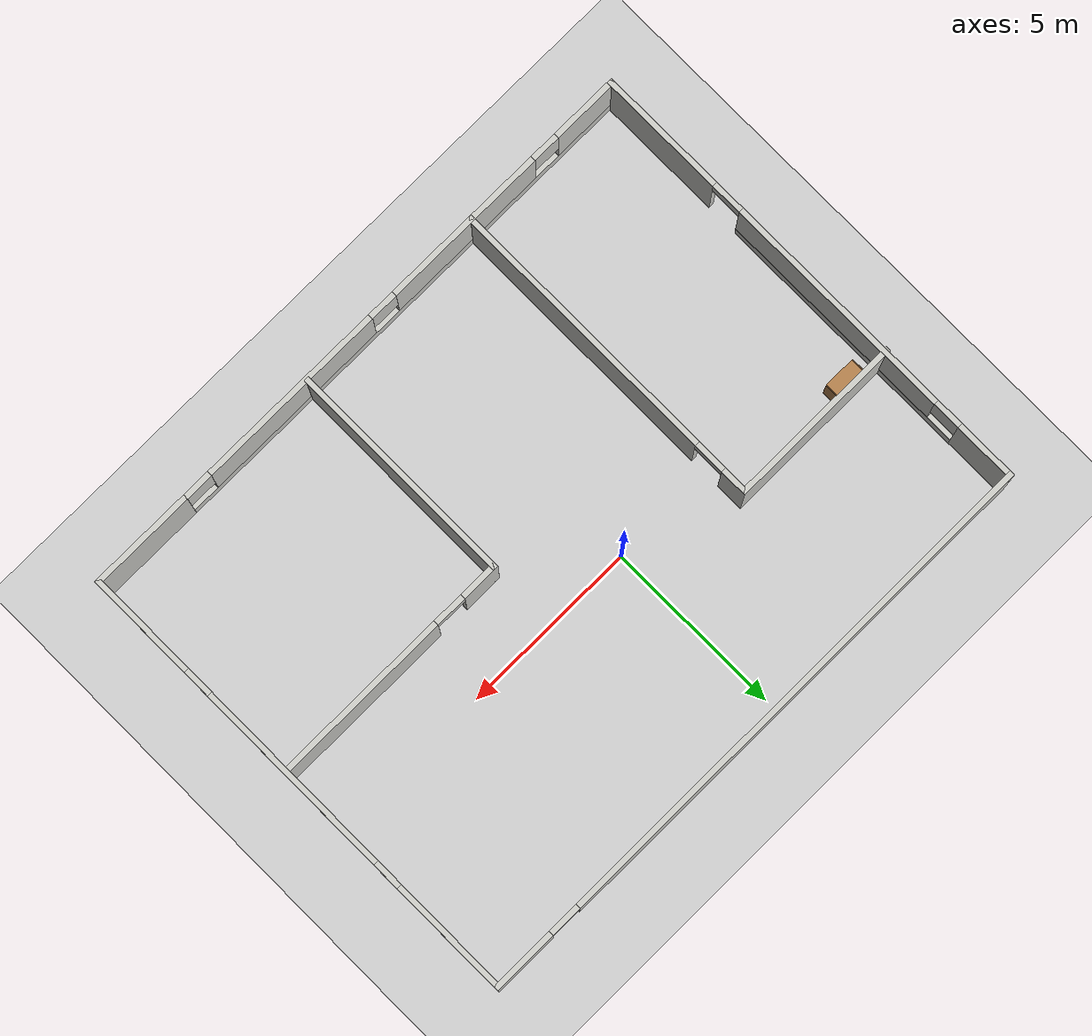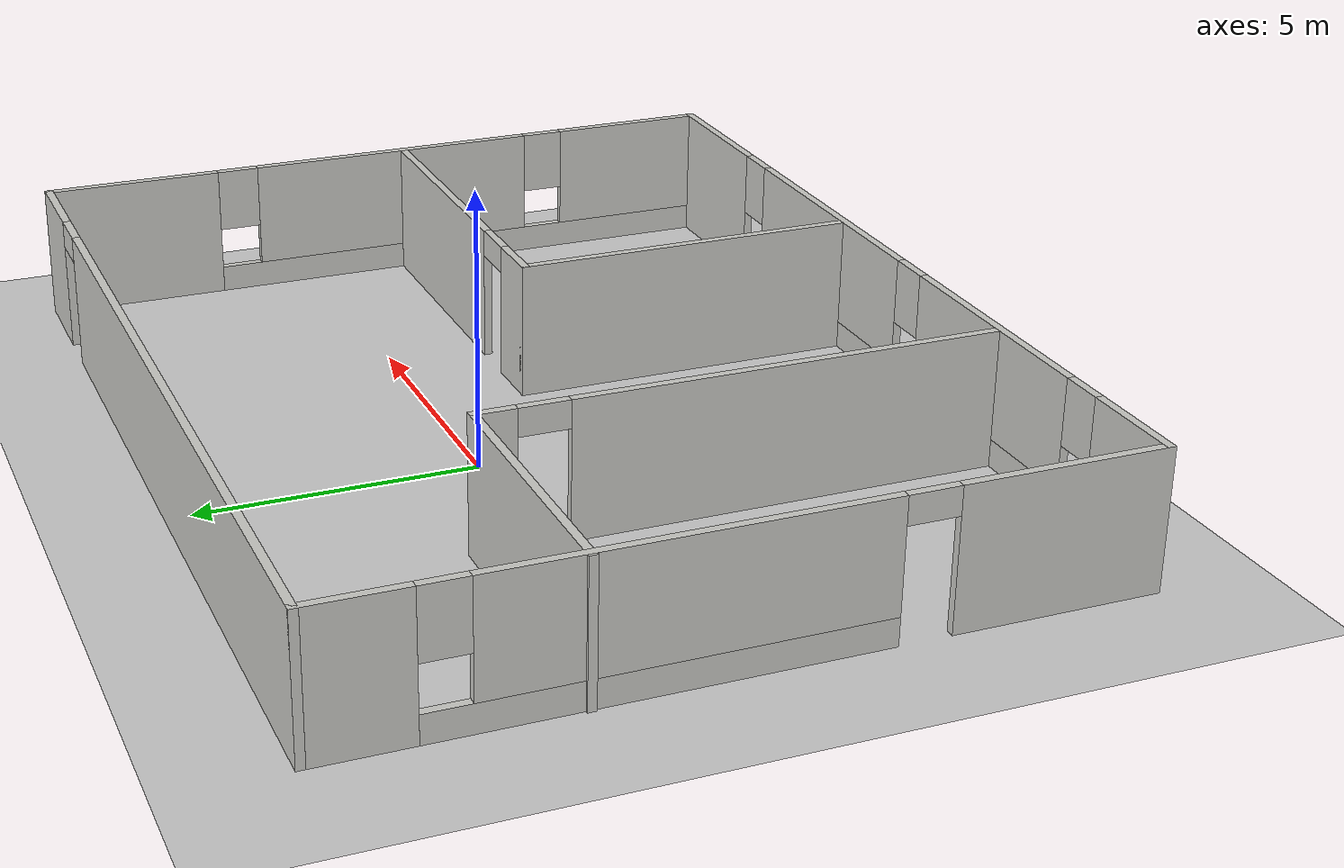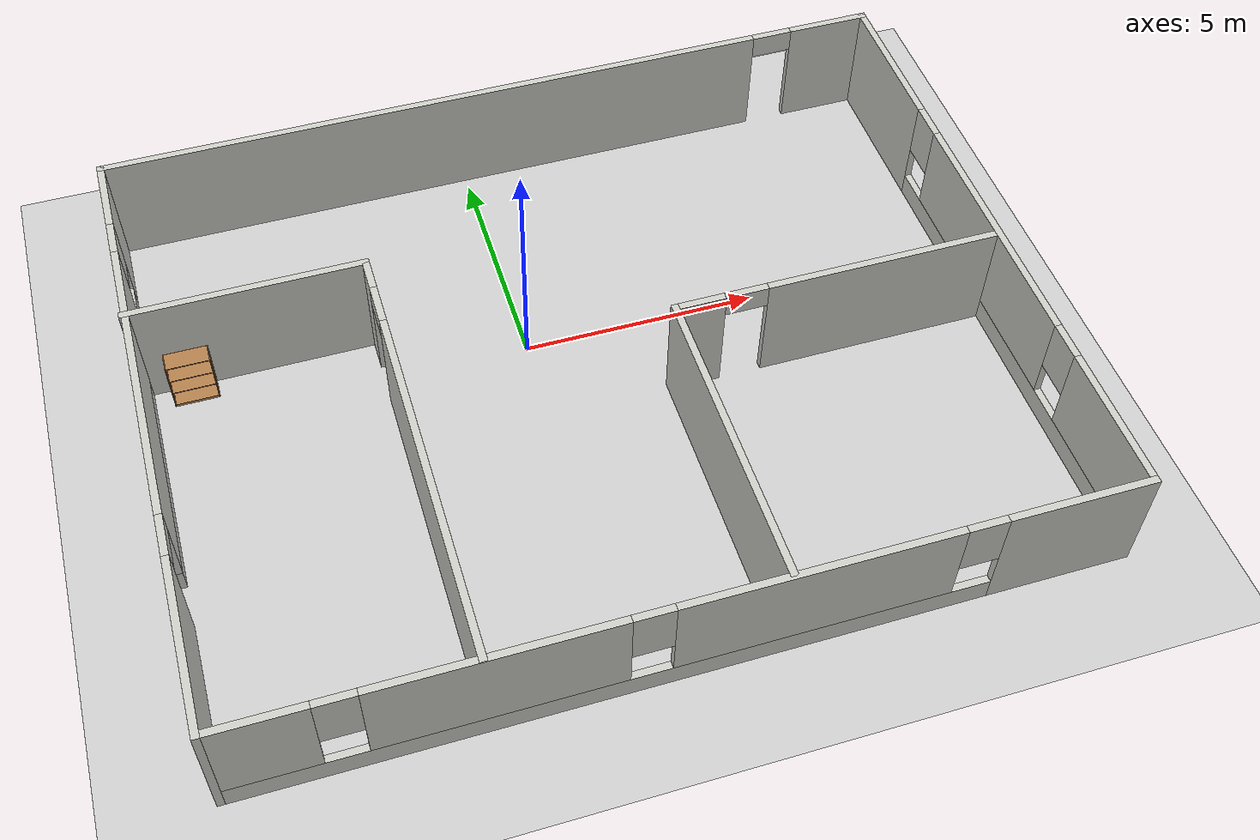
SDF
<sdf version="1.7">
 <world name="default">
  <light name="sun" type="directional">
   <pose>0 0 10 0 -0 0</pose>
   <diffuse>0.8 0.8 0.8 1</diffuse>
   <specular>0.2 0.2 0.2 1</specular>
   <attenuation>
    <range>1000</range>
    <constant>0.9</constant>
    <linear>0.01</linear>
    <quadratic>0.001</quadratic>
   </attenuation>
   <direction>-0.5 0.1 -0.9</direction>
   <spot><inner_angle>0</inner_angle><outer_angle>0</outer_angle><falloff>0</falloff></spot>
  </light>
  <model name="ground_plane">
   <static>1</static>
   <link name="link">
    <collision name="collision">
     <geometry><plane><normal>0 0 1</normal><size>100 100</size></plane></geometry>
     <surface><friction><ode><mu>100</mu><mu2>50</mu2></ode></friction></surface>
    </collision>
    <visual name="visual">
     <cast_shadows>0</cast_shadows>
     <geometry><plane><normal>0 0 1</normal><size>100 100</size></plane></geometry>
     <material>
      <script><uri>file://media/materials/scripts/gazebo.material</uri><name>Gazebo/Grey</name></script>
     </material>
    </visual>
   </link>
  </model>
  <gravity>0 0 -9.8</gravity>
  <magnetic_field>6e-06 2.3e-05 -4.2e-05</magnetic_field>
  <atmosphere type="adiabatic"/>
  <physics type="ode">
   <max_step_size>0.001</max_step_size>
   <real_time_factor>1</real_time_factor>
   <real_time_update_rate>1000</real_time_update_rate>
  </physics>
  <scene><ambient>0.4 0.4 0.4 1</ambient><background>0.7 0.7 0.7 1</background><shadows>1</shadows></scene>
  <audio><device>default</device></audio>
  <spherical_coordinates>
   <surface_model>EARTH_WGS84</surface_model>
   <latitude_deg>0</latitude_deg>
   <longitude_deg>0</longitude_deg>
   <elevation>0</elevation>
   <heading_deg>0</heading_deg>
  </spherical_coordinates>
  <model name="sample_home">
   <pose>0.85489 -1.4286 0 0 -0 0</pose>
   <link name="Wall_10">
    <pose>-3.84826 -2.10868 0 0 -0 -1.5708</pose>
    <visual name="Wall_10_Visual_0">
     <pose>-4.35595 0 1.25 0 -0 0</pose>
     <geometry><box><size>0.788098 0.15 2.5</size></box></geometry>
     <material>
      <script><uri>file://media/materials/scripts/gazebo.material</uri><name>Gazebo/CeilingTiled</name></script>
      <ambient>1 1 1 1</ambient>
     </material>
     <meta><layer>0</layer></meta>
    </visual>
    <collision name="Wall_10_Collision_0">
     <geometry><box><size>0.788098 0.15 2.5</size></box></geometry>
     <pose>-4.35595 0 1.25 0 -0 0</pose>
    </collision>
    <visual name="Wall_10_Visual_1">
     <pose>0.844049 0 1.25 0 -0 0</pose>
     <geometry><box><size>7.8119 0.15 2.5</size></box></geometry>
     <material>
      <script><uri>file://media/materials/scripts/gazebo.material</uri><name>Gazebo/CeilingTiled</name></script>
      <ambient>1 1 1 1</ambient>
     </material>
     <meta><layer>0</layer></meta>
    </visual>
    <collision name="Wall_10_Collision_1">
     <geometry><box><size>7.8119 0.15 2.5</size></box></geometry>
     <pose>0.844049 0 1.25 0 -0 0</pose>
    </collision>
    <visual name="Wall_10_Visual_2">
     <pose>-3.5119 0 2.25 0 -0 0</pose>
     <geometry><box><size>0.9 0.15 0.5</size></box></geometry>
     <material>
      <script><uri>file://media/materials/scripts/gazebo.material</uri><name>Gazebo/CeilingTiled</name></script>
      <ambient>1 1 1 1</ambient>
     </material>
     <meta><layer>0</layer></meta>
    </visual>
    <collision name="Wall_10_Collision_2">
     <geometry><box><size>0.9 0.15 0.5</size></box></geometry>
     <pose>-3.5119 0 2.25 0 -0 0</pose>
    </collision>
   </link>
   <link name="Wall_12">
    <collision name="Wall_12_Collision">
     <geometry><box><size>6.5 0.15 2.5</size></box></geometry>
     <pose>0 0 1.25 0 -0 0</pose>
    </collision>
    <visual name="Wall_12_Visual">
     <pose>0 0 1.25 0 -0 0</pose>
     <geometry><box><size>6.5 0.15 2.5</size></box></geometry>
     <material>
      <script><uri>file://media/materials/scripts/gazebo.material</uri><name>Gazebo/CeilingTiled</name></script>
      <ambient>1 1 1 1</ambient>
     </material>
     <meta><layer>0</layer></meta>
    </visual>
    <pose>1.72309 -3.56346 0 0 -0 1.5708</pose>
   </link>
   <link name="Wall_13">
    <pose>5.14809 -0.388459 0 0 -0 0</pose>
    <visual name="Wall_13_Visual_0">
     <pose>-2.94312 0 1.25 0 -0 0</pose>
     <geometry><box><size>1.11377 0.15 2.5</size></box></geometry>
     <material>
      <script><uri>file://media/materials/scripts/gazebo.material</uri><name>Gazebo/CeilingTiled</name></script>
      <ambient>1 1 1 1</ambient>
     </material>
     <meta><layer>0</layer></meta>
    </visual>
    <collision name="Wall_13_Collision_0">
     <geometry><box><size>1.11377 0.15 2.5</size></box></geometry>
     <pose>-2.94312 0 1.25 0 -0 0</pose>
    </collision>
    <visual name="Wall_13_Visual_1">
     <pose>1.00688 0 1.25 0 -0 0</pose>
     <geometry><box><size>4.98623 0.15 2.5</size></box></geometry>
     <material>
      <script><uri>file://media/materials/scripts/gazebo.material</uri><name>Gazebo/CeilingTiled</name></script>
      <ambient>1 1 1 1</ambient>
     </material>
     <meta><layer>0</layer></meta>
    </visual>
    <collision name="Wall_13_Collision_1">
     <geometry><box><size>4.98623 0.15 2.5</size></box></geometry>
     <pose>1.00688 0 1.25 0 -0 0</pose>
    </collision>
    <visual name="Wall_13_Visual_2">
     <pose>-1.93623 0 2.25 0 -0 0</pose>
     <geometry><box><size>0.9 0.15 0.5</size></box></geometry>
     <material>
      <script><uri>file://media/materials/scripts/gazebo.material</uri><name>Gazebo/CeilingTiled</name></script>
      <ambient>1 1 1 1</ambient>
     </material>
     <meta><layer>0</layer></meta>
    </visual>
    <collision name="Wall_13_Collision_2">
     <geometry><box><size>0.9 0.15 0.5</size></box></geometry>
     <pose>-1.93623 0 2.25 0 -0 0</pose>
    </collision>
   </link>
   <link name="Wall_2">
    <pose>0.023261 6.8 0 0 -0 0</pose>
    <visual name="Wall_2_Visual_0">
     <pose>-1.37736 0 1.25 0 -0 0</pose>
     <geometry><box><size>14.7453 0.15 2.5</size></box></geometry>
     <material>
      <script><uri>file://media/materials/scripts/gazebo.material</uri><name>Gazebo/CeilingTiled</name></script>
      <ambient>1 1 1 1</ambient>
     </material>
     <meta><layer>0</layer></meta>
    </visual>
    <collision name="Wall_2_Collision_0">
     <geometry><box><size>14.7453 0.15 2.5</size></box></geometry>
     <pose>-1.37736 0 1.25 0 -0 0</pose>
    </collision>
    <visual name="Wall_2_Visual_1">
     <pose>7.82264 0 1.25 0 -0 0</pose>
     <geometry><box><size>1.85473 0.15 2.5</size></box></geometry>
     <material>
      <script><uri>file://media/materials/scripts/gazebo.material</uri><name>Gazebo/CeilingTiled</name></script>
      <ambient>1 1 1 1</ambient>
     </material>
     <meta><layer>0</layer></meta>
    </visual>
    <collision name="Wall_2_Collision_1">
     <geometry><box><size>1.85473 0.15 2.5</size></box></geometry>
     <pose>7.82264 0 1.25 0 -0 0</pose>
    </collision>
    <visual name="Wall_2_Visual_2">
     <pose>6.44527 0 2.25 0 -0 0</pose>
     <geometry><box><size>0.9 0.15 0.5</size></box></geometry>
     <material>
      <script><uri>file://media/materials/scripts/gazebo.material</uri><name>Gazebo/CeilingTiled</name></script>
      <ambient>1 1 1 1</ambient>
     </material>
     <meta><layer>0</layer></meta>
    </visual>
    <collision name="Wall_2_Collision_2">
     <geometry><box><size>0.9 0.15 0.5</size></box></geometry>
     <pose>6.44527 0 2.25 0 -0 0</pose>
    </collision>
   </link>
   <link name="Wall_3">
    <pose>8.69826 0 0 0 -0 -1.5708</pose>
    <visual name="Wall_3_Visual_0">
     <pose>-5.17654 0 1.25 0 -0 0</pose>
     <geometry><box><size>3.39691 0.15 2.5</size></box></geometry>
     <material>
      <script><uri>file://media/materials/scripts/gazebo.material</uri><name>Gazebo/CeilingTiled</name></script>
      <ambient>1 1 1 1</ambient>
     </material>
     <meta><layer>0</layer></meta>
    </visual>
    <collision name="Wall_3_Collision_0">
     <geometry><box><size>3.39691 0.15 2.5</size></box></geometry>
     <pose>-5.17654 0 1.25 0 -0 0</pose>
    </collision>
    <visual name="Wall_3_Visual_1">
     <pose>1.69846 0 0.25 0 -0 0</pose>
     <geometry><box><size>10.3531 0.15 0.5</size></box></geometry>
     <material>
      <script><uri>file://media/materials/scripts/gazebo.material</uri><name>Gazebo/CeilingTiled</name></script>
      <ambient>1 1 1 1</ambient>
     </material>
     <meta><layer>0</layer></meta>
    </visual>
    <collision name="Wall_3_Collision_1">
     <geometry><box><size>10.3531 0.15 0.5</size></box></geometry>
     <pose>1.69846 0 0.25 0 -0 0</pose>
    </collision>
    <visual name="Wall_3_Visual_2">
     <pose>0.155325 0 1.5 0 -0 0</pose>
     <geometry><box><size>5.66682 0.15 2</size></box></geometry>
     <material>
      <script><uri>file://media/materials/scripts/gazebo.material</uri><name>Gazebo/CeilingTiled</name></script>
      <ambient>1 1 1 1</ambient>
     </material>
     <meta><layer>0</layer></meta>
    </visual>
    <collision name="Wall_3_Collision_2">
     <geometry><box><size>5.66682 0.15 2</size></box></geometry>
     <pose>0.155325 0 1.5 0 -0 0</pose>
    </collision>
    <visual name="Wall_3_Visual_3">
     <pose>5.33187 0 1.5 0 -0 0</pose>
     <geometry><box><size>3.08626 0.15 2</size></box></geometry>
     <material>
      <script><uri>file://media/materials/scripts/gazebo.material</uri><name>Gazebo/CeilingTiled</name></script>
      <ambient>1 1 1 1</ambient>
     </material>
     <meta><layer>0</layer></meta>
    </visual>
    <collision name="Wall_3_Collision_3">
     <geometry><box><size>3.08626 0.15 2</size></box></geometry>
     <pose>5.33187 0 1.5 0 -0 0</pose>
    </collision>
    <visual name="Wall_3_Visual_4">
     <pose>-3.07809 0 1.9 0 -0 0</pose>
     <geometry><box><size>0.8 0.15 1.2</size></box></geometry>
     <material>
      <script><uri>file://media/materials/scripts/gazebo.material</uri><name>Gazebo/CeilingTiled</name></script>
      <ambient>1 1 1 1</ambient>
     </material>
     <meta><layer>0</layer></meta>
    </visual>
    <collision name="Wall_3_Collision_4">
     <geometry><box><size>0.8 0.15 1.2</size></box></geometry>
     <pose>-3.07809 0 1.9 0 -0 0</pose>
    </collision>
    <visual name="Wall_3_Visual_5">
     <pose>3.38874 0 1.9 0 -0 0</pose>
     <geometry><box><size>0.8 0.15 1.2</size></box></geometry>
     <material>
      <script><uri>file://media/materials/scripts/gazebo.material</uri><name>Gazebo/CeilingTiled</name></script>
      <ambient>1 1 1 1</ambient>
     </material>
     <meta><layer>0</layer></meta>
    </visual>
    <collision name="Wall_3_Collision_5">
     <geometry><box><size>0.8 0.15 1.2</size></box></geometry>
     <pose>3.38874 0 1.9 0 -0 0</pose>
    </collision>
   </link>
   <link name="Wall_4">
    <pose>0.023261 -6.8 0 0 -0 3.14159</pose>
    <visual name="Wall_4_Visual_0">
     <pose>-7.26261 0 1.25 0 -0 0</pose>
     <geometry><box><size>2.97478 0.15 2.5</size></box></geometry>
     <material>
      <script><uri>file://media/materials/scripts/gazebo.material</uri><name>Gazebo/CeilingTiled</name></script>
      <ambient>1 1 1 1</ambient>
     </material>
     <meta><layer>0</layer></meta>
    </visual>
    <collision name="Wall_4_Collision_0">
     <geometry><box><size>2.97478 0.15 2.5</size></box></geometry>
     <pose>-7.26261 0 1.25 0 -0 0</pose>
    </collision>
    <visual name="Wall_4_Visual_1">
     <pose>1.48739 0 0.25 0 -0 0</pose>
     <geometry><box><size>14.5252 0.15 0.5</size></box></geometry>
     <material>
      <script><uri>file://media/materials/scripts/gazebo.material</uri><name>Gazebo/CeilingTiled</name></script>
      <ambient>1 1 1 1</ambient>
     </material>
     <meta><layer>0</layer></meta>
    </visual>
    <collision name="Wall_4_Collision_1">
     <geometry><box><size>14.5252 0.15 0.5</size></box></geometry>
     <pose>1.48739 0 0.25 0 -0 0</pose>
    </collision>
    <visual name="Wall_4_Visual_2">
     <pose>-2.25812 0 1.5 0 -0 0</pose>
     <geometry><box><size>5.4342 0.15 2</size></box></geometry>
     <material>
      <script><uri>file://media/materials/scripts/gazebo.material</uri><name>Gazebo/CeilingTiled</name></script>
      <ambient>1 1 1 1</ambient>
     </material>
     <meta><layer>0</layer></meta>
    </visual>
    <collision name="Wall_4_Collision_2">
     <geometry><box><size>5.4342 0.15 2</size></box></geometry>
     <pose>-2.25812 0 1.5 0 -0 0</pose>
    </collision>
    <visual name="Wall_4_Visual_3">
     <pose>3.62716 0 1.5 0 -0 0</pose>
     <geometry><box><size>4.73635 0.15 2</size></box></geometry>
     <material>
      <script><uri>file://media/materials/scripts/gazebo.material</uri><name>Gazebo/CeilingTiled</name></script>
      <ambient>1 1 1 1</ambient>
     </material>
     <meta><layer>0</layer></meta>
    </visual>
    <collision name="Wall_4_Collision_3">
     <geometry><box><size>4.73635 0.15 2</size></box></geometry>
     <pose>3.62716 0 1.5 0 -0 0</pose>
    </collision>
    <visual name="Wall_4_Visual_4">
     <pose>7.77266 0 1.5 0 -0 0</pose>
     <geometry><box><size>1.95467 0.15 2</size></box></geometry>
     <material>
      <script><uri>file://media/materials/scripts/gazebo.material</uri><name>Gazebo/CeilingTiled</name></script>
      <ambient>1 1 1 1</ambient>
     </material>
     <meta><layer>0</layer></meta>
    </visual>
    <collision name="Wall_4_Collision_4">
     <geometry><box><size>1.95467 0.15 2</size></box></geometry>
     <pose>7.77266 0 1.5 0 -0 0</pose>
    </collision>
    <visual name="Wall_4_Visual_5">
     <pose>-5.37522 0 1.9 0 -0 0</pose>
     <geometry><box><size>0.8 0.15 1.2</size></box></geometry>
     <material>
      <script><uri>file://media/materials/scripts/gazebo.material</uri><name>Gazebo/CeilingTiled</name></script>
      <ambient>1 1 1 1</ambient>
     </material>
     <meta><layer>0</layer></meta>
    </visual>
    <collision name="Wall_4_Collision_5">
     <geometry><box><size>0.8 0.15 1.2</size></box></geometry>
     <pose>-5.37522 0 1.9 0 -0 0</pose>
    </collision>
    <visual name="Wall_4_Visual_6">
     <pose>0.858982 0 1.9 0 -0 0</pose>
     <geometry><box><size>0.8 0.15 1.2</size></box></geometry>
     <material>
      <script><uri>file://media/materials/scripts/gazebo.material</uri><name>Gazebo/CeilingTiled</name></script>
      <ambient>1 1 1 1</ambient>
     </material>
     <meta><layer>0</layer></meta>
    </visual>
    <collision name="Wall_4_Collision_6">
     <geometry><box><size>0.8 0.15 1.2</size></box></geometry>
     <pose>0.858982 0 1.9 0 -0 0</pose>
    </collision>
    <visual name="Wall_4_Visual_7">
     <pose>6.39533 0 1.9 0 -0 0</pose>
     <geometry><box><size>0.8 0.15 1.2</size></box></geometry>
     <material>
      <script><uri>file://media/materials/scripts/gazebo.material</uri><name>Gazebo/CeilingTiled</name></script>
      <ambient>1 1 1 1</ambient>
     </material>
     <meta><layer>0</layer></meta>
    </visual>
    <collision name="Wall_4_Collision_7">
     <geometry><box><size>0.8 0.15 1.2</size></box></geometry>
     <pose>6.39533 0 1.9 0 -0 0</pose>
    </collision>
   </link>
   <link name="Wall_6">
    <pose>-8.65174 0 0 0 -0 -1.5708</pose>
    <visual name="Wall_6_Visual_0">
     <pose>-5.99071 0 1.25 0 -0 0</pose>
     <geometry><box><size>1.76858 0.15 2.5</size></box></geometry>
     <material>
      <script><uri>file://media/materials/scripts/gazebo.material</uri><name>Gazebo/CeilingTiled</name></script>
      <ambient>1 1 1 1</ambient>
     </material>
     <meta><layer>0</layer></meta>
    </visual>
    <collision name="Wall_6_Collision_0">
     <geometry><box><size>1.76858 0.15 2.5</size></box></geometry>
     <pose>-5.99071 0 1.25 0 -0 0</pose>
    </collision>
    <visual name="Wall_6_Visual_1">
     <pose>5.05446 0 1.25 0 -0 0</pose>
     <geometry><box><size>3.64107 0.15 2.5</size></box></geometry>
     <material>
      <script><uri>file://media/materials/scripts/gazebo.material</uri><name>Gazebo/CeilingTiled</name></script>
      <ambient>1 1 1 1</ambient>
     </material>
     <meta><layer>0</layer></meta>
    </visual>
    <collision name="Wall_6_Collision_1">
     <geometry><box><size>3.64107 0.15 2.5</size></box></geometry>
     <pose>5.05446 0 1.25 0 -0 0</pose>
    </collision>
    <visual name="Wall_6_Visual_2">
     <pose>-1.38625 0 0.25 0 -0 0</pose>
     <geometry><box><size>7.44035 0.15 0.5</size></box></geometry>
     <material>
      <script><uri>file://media/materials/scripts/gazebo.material</uri><name>Gazebo/CeilingTiled</name></script>
      <ambient>1 1 1 1</ambient>
     </material>
     <meta><layer>0</layer></meta>
    </visual>
    <collision name="Wall_6_Collision_2">
     <geometry><box><size>7.44035 0.15 0.5</size></box></geometry>
     <pose>-1.38625 0 0.25 0 -0 0</pose>
    </collision>
    <visual name="Wall_6_Visual_3">
     <pose>-0.986249 0 1.5 0 -0 0</pose>
     <geometry><box><size>6.64035 0.15 2</size></box></geometry>
     <material>
      <script><uri>file://media/materials/scripts/gazebo.material</uri><name>Gazebo/CeilingTiled</name></script>
      <ambient>1 1 1 1</ambient>
     </material>
     <meta><layer>0</layer></meta>
    </visual>
    <collision name="Wall_6_Collision_3">
     <geometry><box><size>6.64035 0.15 2</size></box></geometry>
     <pose>-0.986249 0 1.5 0 -0 0</pose>
    </collision>
    <visual name="Wall_6_Visual_4">
     <pose>-4.70642 0 1.9 0 -0 0</pose>
     <geometry><box><size>0.8 0.15 1.2</size></box></geometry>
     <material>
      <script><uri>file://media/materials/scripts/gazebo.material</uri><name>Gazebo/CeilingTiled</name></script>
      <ambient>1 1 1 1</ambient>
     </material>
     <meta><layer>0</layer></meta>
    </visual>
    <collision name="Wall_6_Collision_4">
     <geometry><box><size>0.8 0.15 1.2</size></box></geometry>
     <pose>-4.70642 0 1.9 0 -0 0</pose>
    </collision>
    <visual name="Wall_6_Visual_5">
     <pose>2.78393 0 2.25 0 -0 0</pose>
     <geometry><box><size>0.9 0.15 0.5</size></box></geometry>
     <material>
      <script><uri>file://media/materials/scripts/gazebo.material</uri><name>Gazebo/CeilingTiled</name></script>
      <ambient>1 1 1 1</ambient>
     </material>
     <meta><layer>0</layer></meta>
    </visual>
    <collision name="Wall_6_Collision_5">
     <geometry><box><size>0.9 0.15 0.5</size></box></geometry>
     <pose>2.78393 0 2.25 0 -0 0</pose>
    </collision>
   </link>
   <link name="Wall_9">
    <collision name="Wall_9_Collision">
     <geometry><box><size>5 0.15 2.5</size></box></geometry>
     <pose>0 0 1.25 0 -0 0</pose>
    </collision>
    <visual name="Wall_9_Visual">
     <pose>0 0 1.25 0 -0 0</pose>
     <geometry><box><size>5 0.15 2.5</size></box></geometry>
     <material>
      <script><uri>file://media/materials/scripts/gazebo.material</uri><name>Gazebo/CeilingTiled</name></script>
      <ambient>1 1 1 1</ambient>
     </material>
     <meta><layer>0</layer></meta>
    </visual>
    <pose>-6.27326 2.56632 0 0 -0 0</pose>
   </link>
   <static>1</static>
  </model>
  <model name="bookshelf">
   <static>1</static>
   <link name="link">
    <inertial><mass>1</mass></inertial>
    <collision name="back">
     <pose>0 0.005 0.6 0 -0 0</pose>
     <geometry><box><size>0.9 0.01 1.2</size></box></geometry>
    </collision>
    <visual name="visual1">
     <pose>0 0.005 0.6 0 -0 0</pose>
     <geometry><box><size>0.9 0.01 1.2</size></box></geometry>
     <material>
      <script><uri>file://media/materials/scripts/gazebo.material</uri><name>Gazebo/Wood</name></script>
     </material>
    </visual>
    <collision name="left_side">
     <pose>0.45 -0.195 0.6 0 -0 0</pose>
     <geometry><box><size>0.02 0.4 1.2</size></box></geometry>
    </collision>
    <visual name="visual2">
     <pose>0.45 -0.195 0.6 0 -0 0</pose>
     <geometry><box><size>0.02 0.4 1.2</size></box></geometry>
     <material>
      <script><uri>file://media/materials/scripts/gazebo.material</uri><name>Gazebo/Wood</name></script>
     </material>
    </visual>
    <collision name="right_side">
     <pose>-0.45 -0.195 0.6 0 -0 0</pose>
     <geometry><box><size>0.02 0.4 1.2</size></box></geometry>
    </collision>
    <visual name="visual3">
     <pose>-0.45 -0.195 0.6 0 -0 0</pose>
     <geometry><box><size>0.02 0.4 1.2</size></box></geometry>
     <material>
      <script><uri>file://media/materials/scripts/gazebo.material</uri><name>Gazebo/Wood</name></script>
     </material>
    </visual>
    <collision name="bottom">
     <pose>0 -0.195 0.03 0 -0 0</pose>
     <geometry><box><size>0.88 0.4 0.06</size></box></geometry>
    </collision>
    <visual name="visual4">
     <pose>0 -0.195 0.03 0 -0 0</pose>
     <geometry><box><size>0.88 0.4 0.06</size></box></geometry>
     <material>
      <script><uri>file://media/materials/scripts/gazebo.material</uri><name>Gazebo/Wood</name></script>
     </material>
    </visual>
    <collision name="top">
     <pose>0 -0.195 1.19 0 -0 0</pose>
     <geometry><box><size>0.88 0.4 0.02</size></box></geometry>
    </collision>
    <visual name="visual5">
     <pose>0 -0.195 1.19 0 -0 0</pose>
     <geometry><box><size>0.88 0.4 0.02</size></box></geometry>
     <material>
      <script><uri>file://media/materials/scripts/gazebo.material</uri><name>Gazebo/Wood</name></script>
     </material>
    </visual>
    <collision name="low_shelf">
     <pose>0 -0.195 0.43 0 -0 0</pose>
     <geometry><box><size>0.88 0.4 0.02</size></box></geometry>
    </collision>
    <visual name="visual6">
     <pose>0 -0.195 0.43 0 -0 0</pose>
     <geometry><box><size>0.88 0.4 0.02</size></box></geometry>
     <material>
      <script><uri>file://media/materials/scripts/gazebo.material</uri><name>Gazebo/Wood</name></script>
     </material>
    </visual>
    <collision name="high_shelf">
     <pose>0 -0.195 0.8 0 -0 0</pose>
     <geometry><box><size>0.88 0.4 0.02</size></box></geometry>
    </collision>
    <visual name="visual7">
     <pose>0 -0.195 0.8 0 -0 0</pose>
     <geometry><box><size>0.88 0.4 0.02</size></box></geometry>
     <material>
      <script><uri>file://media/materials/scripts/gazebo.material</uri><name>Gazebo/Wood</name></script>
     </material>
    </visual>
   </link>
   <pose>-6.87495 1.01613 0 0 -0 0</pose>
  </model>
 </world>
</sdf>
